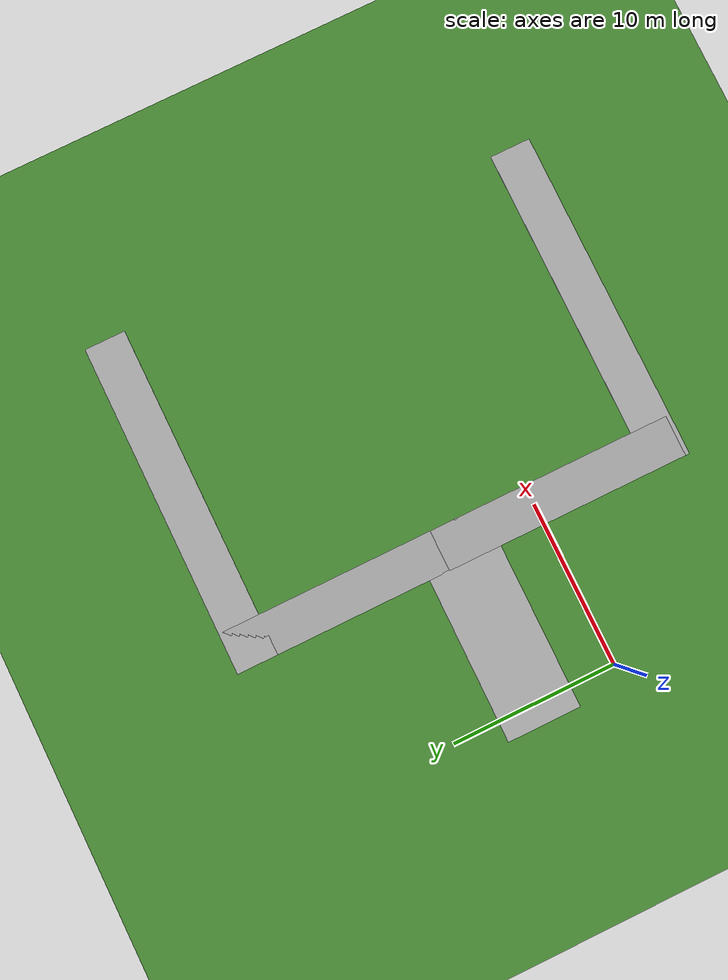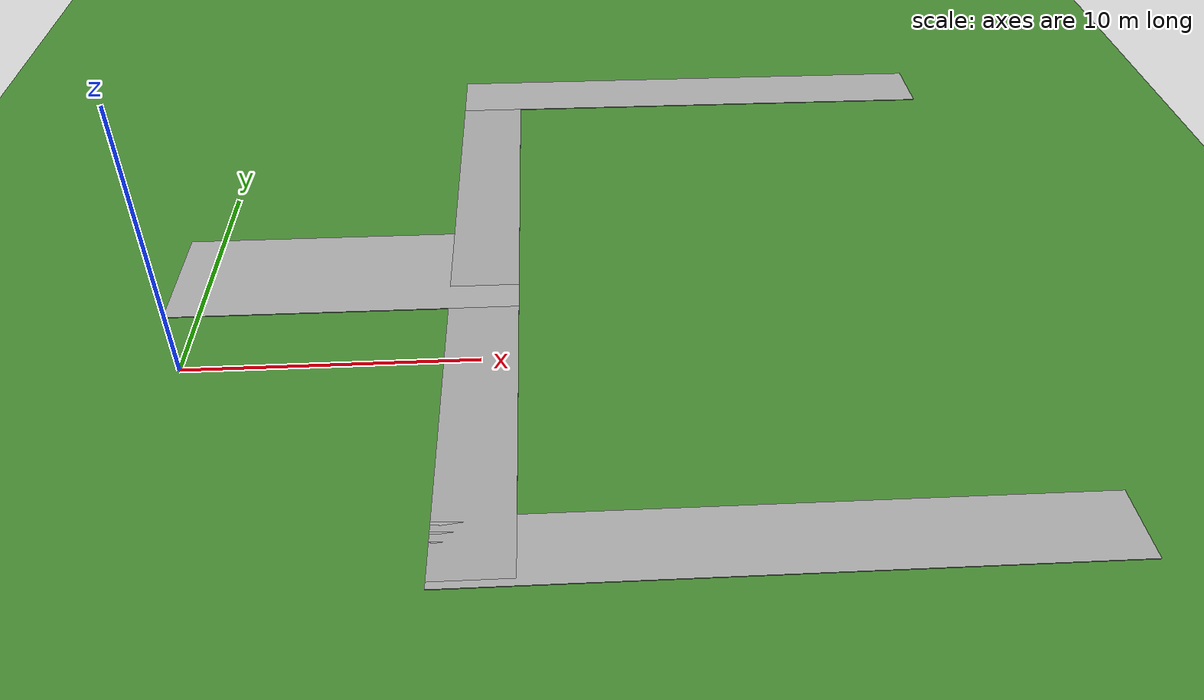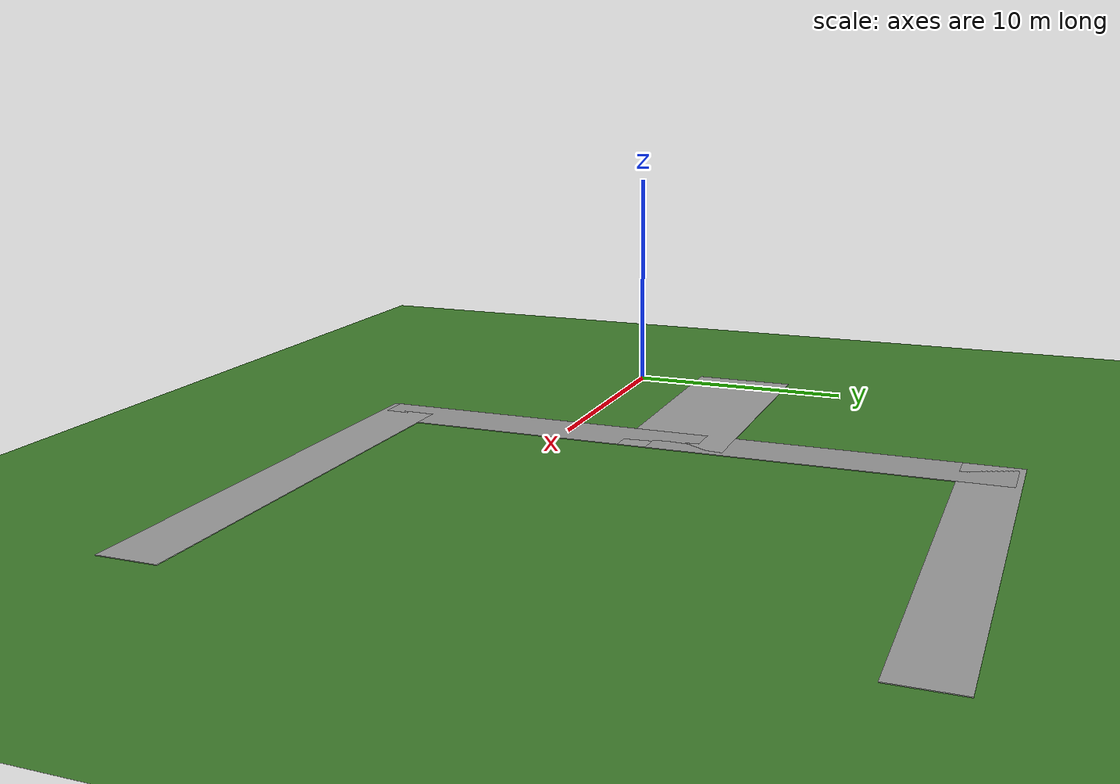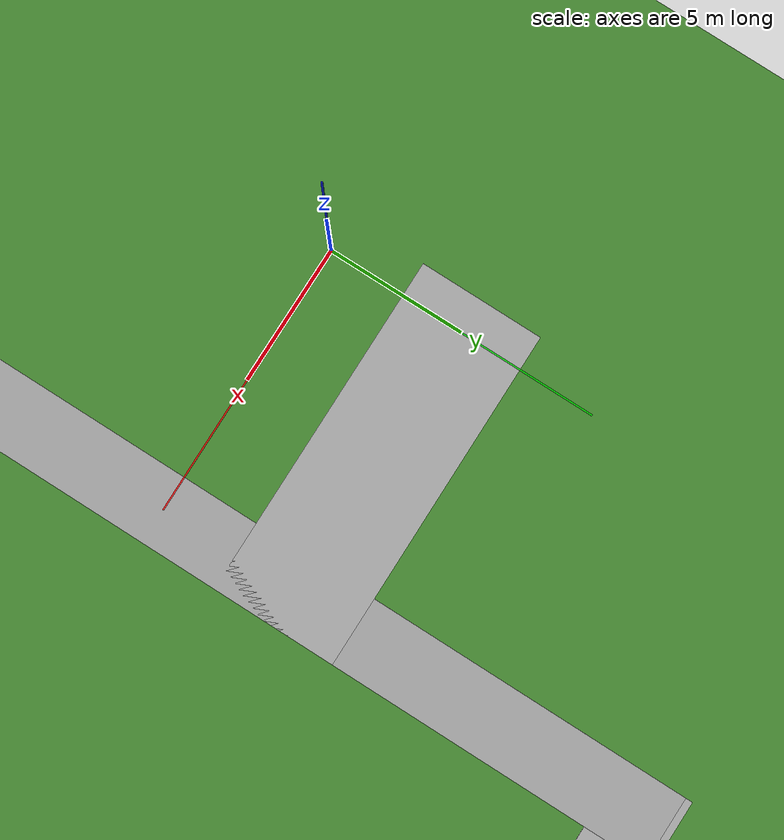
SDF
<sdf version="1.9">
 <world name="person_tracking_path">
  <physics name="1ms" type="ignore">
   <max_step_size>0.001</max_step_size>
   <real_time_factor>1.0</real_time_factor>
  </physics>
  <plugin filename="gz-sim-physics-system" name="gz::sim::systems::Physics"/>
  <plugin filename="gz-sim-sensors-system" name="gz::sim::systems::Sensors">
   <render_engine>ogre2</render_engine>
  </plugin>
  <plugin filename="gz-sim-user-commands-system" name="gz::sim::systems::UserCommands"/>
  <plugin filename="gz-sim-scene-broadcaster-system" name="gz::sim::systems::SceneBroadcaster"/>
  <plugin filename="gz-sim-imu-system" name="gz::sim::systems::Imu"/>
  <plugin filename="gz-sim-navsat-system" name="gz::sim::systems::NavSat"/>
  <scene>
   <ambient>0.8 0.8 0.8 1.0</ambient>
   <background>0.7 0.85 1.0 1.0</background>
   <sky><clouds><speed>12</speed></clouds></sky>
  </scene>
  <spherical_coordinates>
   <latitude_deg>-35.363262</latitude_deg>
   <longitude_deg>149.165237</longitude_deg>
   <elevation>584</elevation>
   <heading_deg>0</heading_deg>
   <surface_model>EARTH_WGS84</surface_model>
  </spherical_coordinates>
  <light type="directional" name="sun">
   <pose>0 0 50 0 0 0</pose>
   <diffuse>0.9 0.9 0.9 1</diffuse>
   <specular>0.8 0.8 0.8 1</specular>
   <attenuation>
    <range>1000</range>
    <constant>0.9</constant>
    <linear>0.01</linear>
    <quadratic>0.001</quadratic>
   </attenuation>
   <direction>-0.4 0.2 -0.9</direction>
  </light>
  <model name="axes">
   <static>1</static>
   <link name="link">
    <visual name="r">
     <cast_shadows>0</cast_shadows>
     <pose>5 0 0.05 0 0 0</pose>
     <geometry><box><size>10 0.05 0.05</size></box></geometry>
     <material><ambient>1 0 0 0.8</ambient><diffuse>1 0 0 0.8</diffuse><emissive>1 0 0 0.8</emissive></material>
    </visual>
    <visual name="g">
     <cast_shadows>0</cast_shadows>
     <pose>0 5 0.05 0 0 0</pose>
     <geometry><box><size>0.05 10 0.05</size></box></geometry>
     <material><ambient>0 1 0 0.8</ambient><diffuse>0 1 0 0.8</diffuse><emissive>0 1 0 0.8</emissive></material>
    </visual>
    <visual name="b">
     <cast_shadows>0</cast_shadows>
     <pose>0 0 5.0 0 0 0</pose>
     <geometry><box><size>0.05 0.05 10</size></box></geometry>
     <material><ambient>0 0 1 0.8</ambient><diffuse>0 0 1 0.8</diffuse><emissive>0 0 1 0.8</emissive></material>
    </visual>
    <sensor name="navsat_sensor" type="navsat"><always_on>1</always_on><update_rate>1</update_rate></sensor>
   </link>
  </model>
  <model name="ground_grass">
   <static>true</static>
   <link name="ground_link">
    <collision name="ground_collision">
     <pose>0 0 -0.05 0 0 0</pose>
     <geometry><box><size>140 140 0.10</size></box></geometry>
     <surface><friction><ode><mu>100</mu><mu2>50</mu2></ode></friction></surface>
    </collision>
    <visual name="ground_visual">
     <geometry><plane><normal>0 0 1</normal><size>140 140</size></plane></geometry>
     <material>
      <ambient>0.22 0.48 0.16 1.0</ambient>
      <diffuse>0.28 0.55 0.20 1.0</diffuse>
      <specular>0.05 0.08 0.05 1.0</specular>
     </material>
    </visual>
   </link>
  </model>
  <model name="fork_walkway">
   <static>true</static>
   <link name="walkway_link">
    <visual name="main_stem_visual">
     <pose>5.0 5.0 0.015 0 0 0</pose>
     <geometry><box><size>12.5 4.5 0.03</size></box></geometry>
     <material>
      <ambient>0.62 0.62 0.62 1.0</ambient>
      <diffuse>0.68 0.68 0.68 1.0</diffuse>
      <specular>0.15 0.15 0.15 1.0</specular>
     </material>
    </visual>
    <collision name="main_stem_col">
     <pose>5.0 5.0 0.015 0 0 0</pose>
     <geometry><box><size>12.5 4.5 0.03</size></box></geometry>
    </collision>
    <visual name="north_seg1_visual">
     <pose>10.0 11.5 0.015 0 0 0</pose>
     <geometry><box><size>2.5 15.0 0.03</size></box></geometry>
     <material>
      <ambient>0.60 0.60 0.60 1.0</ambient>
      <diffuse>0.66 0.66 0.66 1.0</diffuse>
      <specular>0.15 0.15 0.15 1.0</specular>
     </material>
    </visual>
    <collision name="north_seg1_col">
     <pose>10.0 11.5 0.015 0 0 0</pose>
     <geometry><box><size>2.5 15.0 0.03</size></box></geometry>
    </collision>
    <visual name="north_seg2_visual">
     <pose>19.0 18.0 0.015 0 0 0</pose>
     <geometry><box><size>20.5 2.5 0.03</size></box></geometry>
     <material>
      <ambient>0.62 0.62 0.62 1.0</ambient>
      <diffuse>0.68 0.68 0.68 1.0</diffuse>
      <specular>0.15 0.15 0.15 1.0</specular>
     </material>
    </visual>
    <collision name="north_seg2_col">
     <pose>19.0 18.0 0.015 0 0 0</pose>
     <geometry><box><size>20.5 2.5 0.03</size></box></geometry>
    </collision>
    <visual name="south_seg1_visual">
     <pose>10.0 -1.5 0.015 0 0 0</pose>
     <geometry><box><size>2.5 15.0 0.03</size></box></geometry>
     <material>
      <ambient>0.60 0.60 0.60 1.0</ambient>
      <diffuse>0.66 0.66 0.66 1.0</diffuse>
      <specular>0.15 0.15 0.15 1.0</specular>
     </material>
    </visual>
    <collision name="south_seg1_col">
     <pose>10.0 -1.5 0.015 0 0 0</pose>
     <geometry><box><size>2.5 15.0 0.03</size></box></geometry>
    </collision>
    <visual name="south_seg2_visual">
     <pose>19.0 -8.0 0.015 0 0 0</pose>
     <geometry><box><size>20.5 2.5 0.03</size></box></geometry>
     <material>
      <ambient>0.62 0.62 0.62 1.0</ambient>
      <diffuse>0.68 0.68 0.68 1.0</diffuse>
      <specular>0.15 0.15 0.15 1.0</specular>
     </material>
    </visual>
    <collision name="south_seg2_col">
     <pose>19.0 -8.0 0.015 0 0 0</pose>
     <geometry><box><size>20.5 2.5 0.03</size></box></geometry>
    </collision>
   </link>
  </model>
 </world>
</sdf>
